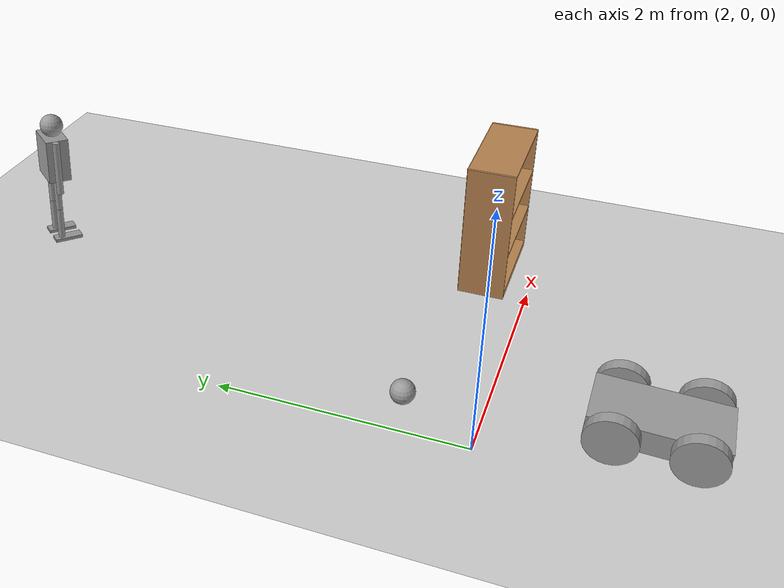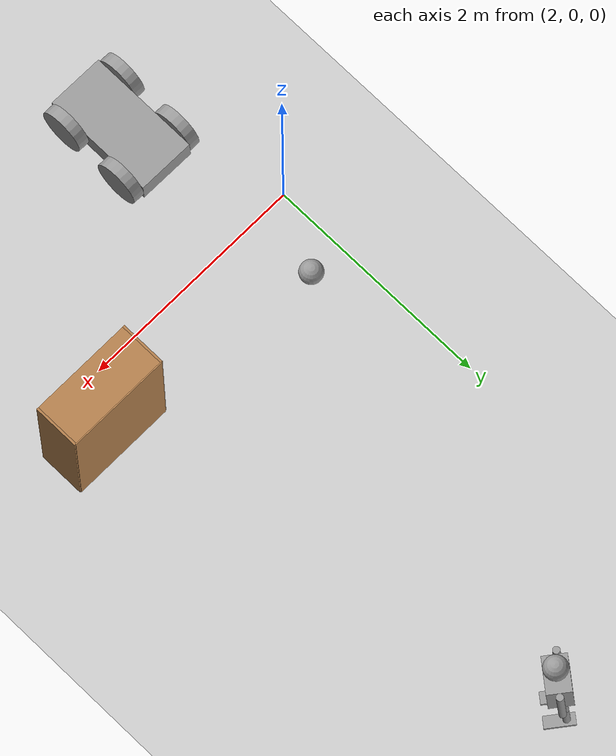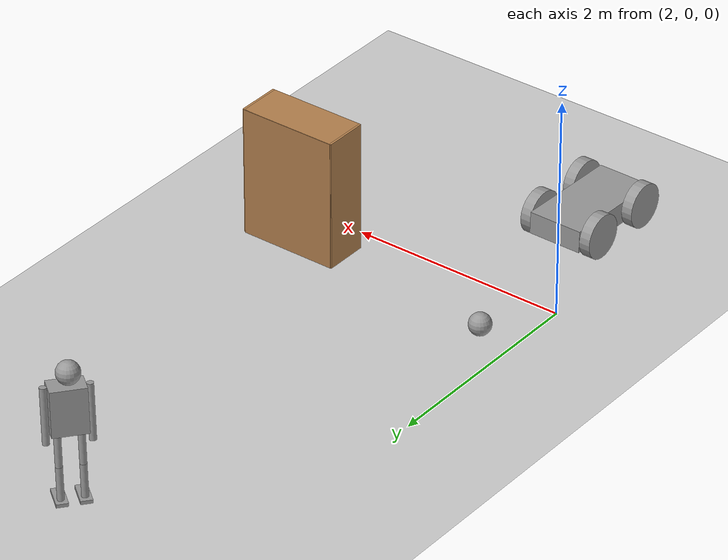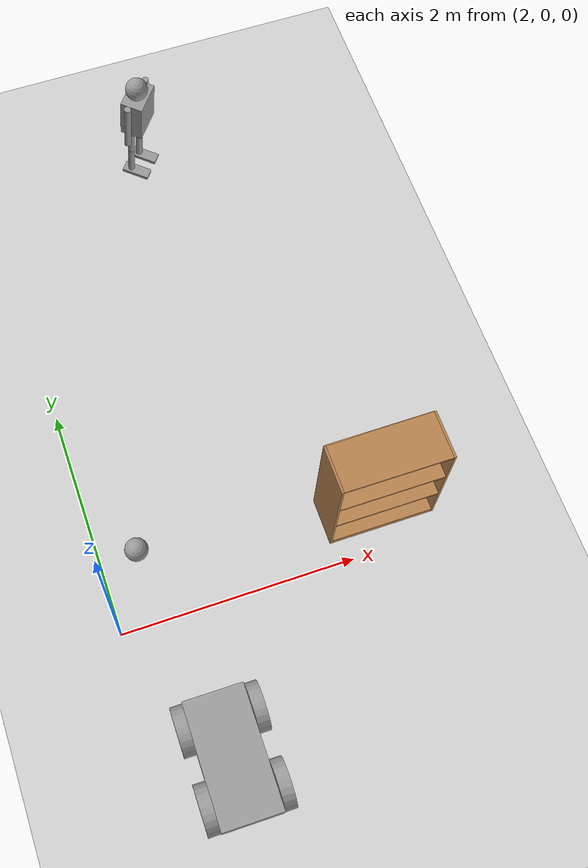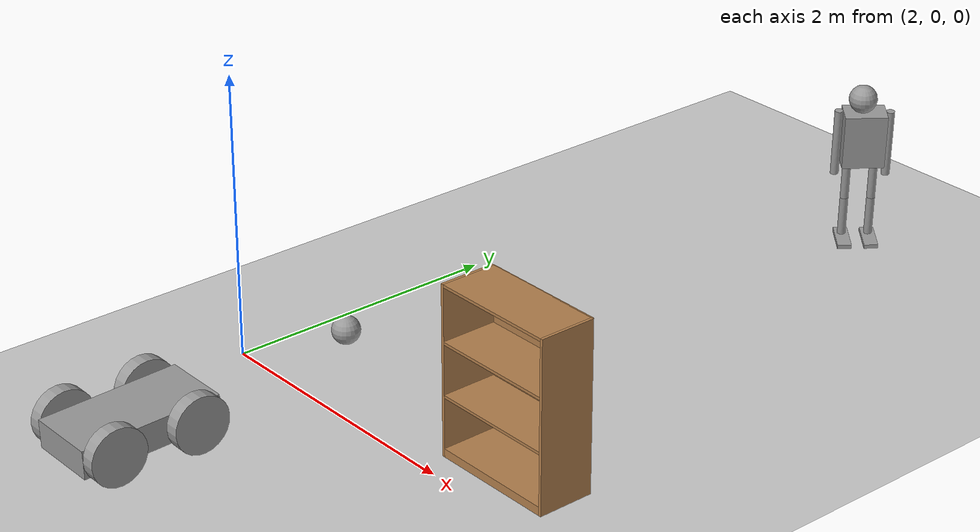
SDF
<sdf version="1.7">
 <world name="default">
  <model name="ground_plane">
   <static>1</static>
   <link name="link">
    <collision name="collision">
     <geometry><plane><normal>0 0 1</normal><size>100 100</size></plane></geometry>
     <surface>
      <contact><collide_bitmask>65535</collide_bitmask></contact>
      <friction><ode><mu>100</mu><mu2>50</mu2></ode></friction>
     </surface>
    </collision>
    <visual name="visual">
     <cast_shadows>0</cast_shadows>
     <geometry><plane><normal>0 0 1</normal><size>100 100</size></plane></geometry>
     <material>
      <script><uri>file://media/materials/scripts/gazebo.material</uri><name>Gazebo/Grey</name></script>
     </material>
    </visual>
   </link>
  </model>
  <model name="humanoid_0">
   <link name="link_0_clone">
    <inertial>
     <mass>1</mass>
     <inertia>
      <ixx>0.166667</ixx>
      <ixy>0</ixy>
      <ixz>0</ixz>
      <iyy>0.166667</iyy>
      <iyz>0</iyz>
      <izz>0.166667</izz>
     </inertia>
    </inertial>
    <pose>0.418913 -0.113822 0.015 0 -0 0</pose>
    <visual name="visual">
     <geometry><box><size>0.1 0.25 0.03</size></box></geometry>
     <material>
      <lighting>1</lighting>
      <script><uri>file://media/materials/scripts/gazebo.material</uri><name>Gazebo/Grey</name></script>
      <shader type="pixel"><normal_map>__default__</normal_map></shader>
      <ambient>0.3 0.3 0.3 1</ambient>
      <diffuse>0.7 0.7 0.7 1</diffuse>
      <specular>0.01 0.01 0.01 1</specular>
      <emissive>0 0 0 1</emissive>
     </material>
    </visual>
    <collision name="collision">
     <geometry><box><size>0.1 0.25 0.03</size></box></geometry>
     <surface>
      <friction>
       <ode><mu>1</mu><mu2>1</mu2><fdir1>0 0 0</fdir1><slip1>0</slip1><slip2>0</slip2></ode>
       <torsional>
        <coefficient>1</coefficient>
        <patch_radius>0</patch_radius>
        <surface_radius>0</surface_radius>
        <use_patch_radius>1</use_patch_radius>
        <ode><slip>0</slip></ode>
       </torsional>
      </friction>
      <bounce><restitution_coefficient>0</restitution_coefficient><threshold>1e+06</threshold></bounce>
      <contact>
       <collide_without_contact>0</collide_without_contact>
       <collide_without_contact_bitmask>1</collide_without_contact_bitmask>
       <collide_bitmask>1</collide_bitmask>
       <ode>
        <soft_cfm>0</soft_cfm>
        <soft_erp>0.2</soft_erp>
        <kp>1e+13</kp>
        <kd>1</kd>
        <max_vel>0.01</max_vel>
        <min_depth>0</min_depth>
       </ode>
       <bullet>
        <split_impulse>1</split_impulse>
        <split_impulse_penetration_threshold>-0.01</split_impulse_penetration_threshold>
        <soft_cfm>0</soft_cfm>
        <soft_erp>0.2</soft_erp>
        <kp>1e+13</kp>
        <kd>1</kd>
       </bullet>
      </contact>
     </surface>
    </collision>
   </link>
   <link name="link_0_clone_0">
    <inertial>
     <mass>1</mass>
     <inertia>
      <ixx>0.166667</ixx>
      <ixy>0</ixy>
      <ixz>0</ixz>
      <iyy>0.166667</iyy>
      <iyz>0</iyz>
      <izz>0.166667</izz>
     </inertia>
    </inertial>
    <pose>0.228912 -0.113822 0.015 0 -0 0</pose>
    <visual name="visual">
     <geometry><box><size>0.1 0.25 0.03</size></box></geometry>
     <material>
      <lighting>1</lighting>
      <script><uri>file://media/materials/scripts/gazebo.material</uri><name>Gazebo/Grey</name></script>
      <shader type="pixel"><normal_map>__default__</normal_map></shader>
      <ambient>0.3 0.3 0.3 1</ambient>
      <diffuse>0.7 0.7 0.7 1</diffuse>
      <specular>0.01 0.01 0.01 1</specular>
      <emissive>0 0 0 1</emissive>
     </material>
    </visual>
    <collision name="collision">
     <geometry><box><size>0.1 0.25 0.03</size></box></geometry>
     <surface>
      <friction>
       <ode><mu>1</mu><mu2>1</mu2><fdir1>0 0 0</fdir1><slip1>0</slip1><slip2>0</slip2></ode>
       <torsional>
        <coefficient>1</coefficient>
        <patch_radius>0</patch_radius>
        <surface_radius>0</surface_radius>
        <use_patch_radius>1</use_patch_radius>
        <ode><slip>0</slip></ode>
       </torsional>
      </friction>
      <bounce><restitution_coefficient>0</restitution_coefficient><threshold>1e+06</threshold></bounce>
      <contact>
       <collide_without_contact>0</collide_without_contact>
       <collide_without_contact_bitmask>1</collide_without_contact_bitmask>
       <collide_bitmask>1</collide_bitmask>
       <ode>
        <soft_cfm>0</soft_cfm>
        <soft_erp>0.2</soft_erp>
        <kp>1e+13</kp>
        <kd>1</kd>
        <max_vel>0.01</max_vel>
        <min_depth>0</min_depth>
       </ode>
       <bullet>
        <split_impulse>1</split_impulse>
        <split_impulse_penetration_threshold>-0.01</split_impulse_penetration_threshold>
        <soft_cfm>0</soft_cfm>
        <soft_erp>0.2</soft_erp>
        <kp>1e+13</kp>
        <kd>1</kd>
       </bullet>
      </contact>
     </surface>
    </collision>
   </link>
   <link name="link_1_clone">
    <inertial>
     <mass>1</mass>
     <inertia><ixx>0.145833</ixx><ixy>0</ixy><ixz>0</ixz><iyy>0.145833</iyy><iyz>0</iyz><izz>0.125</izz></inertia>
    </inertial>
    <pose>0.418913 -0.05882 0.175001 0 -0 0</pose>
    <visual name="visual">
     <geometry><cylinder><radius>0.03</radius><length>0.3</length></cylinder></geometry>
     <material>
      <lighting>1</lighting>
      <script><uri>file://media/materials/scripts/gazebo.material</uri><name>Gazebo/Grey</name></script>
      <shader type="pixel"><normal_map>__default__</normal_map></shader>
      <ambient>0.3 0.3 0.3 1</ambient>
      <diffuse>0.7 0.7 0.7 1</diffuse>
      <specular>0.01 0.01 0.01 1</specular>
      <emissive>0 0 0 1</emissive>
     </material>
    </visual>
    <collision name="collision">
     <geometry><cylinder><radius>0.03</radius><length>0.3</length></cylinder></geometry>
     <surface>
      <friction>
       <ode><mu>1</mu><mu2>1</mu2><fdir1>0 0 0</fdir1><slip1>0</slip1><slip2>0</slip2></ode>
       <torsional>
        <coefficient>1</coefficient>
        <patch_radius>0</patch_radius>
        <surface_radius>0</surface_radius>
        <use_patch_radius>1</use_patch_radius>
        <ode><slip>0</slip></ode>
       </torsional>
      </friction>
      <bounce><restitution_coefficient>0</restitution_coefficient><threshold>1e+06</threshold></bounce>
      <contact>
       <collide_without_contact>0</collide_without_contact>
       <collide_without_contact_bitmask>1</collide_without_contact_bitmask>
       <collide_bitmask>1</collide_bitmask>
       <ode>
        <soft_cfm>0</soft_cfm>
        <soft_erp>0.2</soft_erp>
        <kp>1e+13</kp>
        <kd>1</kd>
        <max_vel>0.01</max_vel>
        <min_depth>0</min_depth>
       </ode>
       <bullet>
        <split_impulse>1</split_impulse>
        <split_impulse_penetration_threshold>-0.01</split_impulse_penetration_threshold>
        <soft_cfm>0</soft_cfm>
        <soft_erp>0.2</soft_erp>
        <kp>1e+13</kp>
        <kd>1</kd>
       </bullet>
      </contact>
     </surface>
    </collision>
   </link>
   <link name="link_1_clone_clone">
    <inertial>
     <mass>1</mass>
     <inertia><ixx>0.145833</ixx><ixy>0</ixy><ixz>0</ixz><iyy>0.145833</iyy><iyz>0</iyz><izz>0.125</izz></inertia>
    </inertial>
    <pose>0.228912 -0.058822 0.175 0 -0 0</pose>
    <visual name="visual">
     <geometry><cylinder><radius>0.03</radius><length>0.3</length></cylinder></geometry>
     <material>
      <lighting>1</lighting>
      <script><uri>file://media/materials/scripts/gazebo.material</uri><name>Gazebo/Grey</name></script>
      <shader type="pixel"><normal_map>__default__</normal_map></shader>
      <ambient>0.3 0.3 0.3 1</ambient>
      <diffuse>0.7 0.7 0.7 1</diffuse>
      <specular>0.01 0.01 0.01 1</specular>
      <emissive>0 0 0 1</emissive>
     </material>
    </visual>
    <collision name="collision">
     <geometry><cylinder><radius>0.03</radius><length>0.3</length></cylinder></geometry>
     <surface>
      <friction>
       <ode><mu>1</mu><mu2>1</mu2><fdir1>0 0 0</fdir1><slip1>0</slip1><slip2>0</slip2></ode>
       <torsional>
        <coefficient>1</coefficient>
        <patch_radius>0</patch_radius>
        <surface_radius>0</surface_radius>
        <use_patch_radius>1</use_patch_radius>
        <ode><slip>0</slip></ode>
       </torsional>
      </friction>
      <bounce><restitution_coefficient>0</restitution_coefficient><threshold>1e+06</threshold></bounce>
      <contact>
       <collide_without_contact>0</collide_without_contact>
       <collide_without_contact_bitmask>1</collide_without_contact_bitmask>
       <collide_bitmask>1</collide_bitmask>
       <ode>
        <soft_cfm>0</soft_cfm>
        <soft_erp>0.2</soft_erp>
        <kp>1e+13</kp>
        <kd>1</kd>
        <max_vel>0.01</max_vel>
        <min_depth>0</min_depth>
       </ode>
       <bullet>
        <split_impulse>1</split_impulse>
        <split_impulse_penetration_threshold>-0.01</split_impulse_penetration_threshold>
        <soft_cfm>0</soft_cfm>
        <soft_erp>0.2</soft_erp>
        <kp>1e+13</kp>
        <kd>1</kd>
       </bullet>
      </contact>
     </surface>
    </collision>
   </link>
   <link name="link_1_clone_clone_0">
    <inertial>
     <mass>1</mass>
     <inertia><ixx>0.145833</ixx><ixy>0</ixy><ixz>0</ixz><iyy>0.145833</iyy><iyz>0</iyz><izz>0.125</izz></inertia>
    </inertial>
    <pose>0.418912 -0.05882 0.475001 0 -4e-06 1.3e-05</pose>
    <visual name="visual">
     <geometry><cylinder><radius>0.03</radius><length>0.3</length></cylinder></geometry>
     <material>
      <lighting>1</lighting>
      <script><uri>file://media/materials/scripts/gazebo.material</uri><name>Gazebo/Grey</name></script>
      <shader type="pixel"><normal_map>__default__</normal_map></shader>
      <ambient>0.3 0.3 0.3 1</ambient>
      <diffuse>0.7 0.7 0.7 1</diffuse>
      <specular>0.01 0.01 0.01 1</specular>
      <emissive>0 0 0 1</emissive>
     </material>
    </visual>
    <collision name="collision">
     <geometry><cylinder><radius>0.03</radius><length>0.3</length></cylinder></geometry>
     <surface>
      <friction>
       <ode><mu>1</mu><mu2>1</mu2><fdir1>0 0 0</fdir1><slip1>0</slip1><slip2>0</slip2></ode>
       <torsional>
        <coefficient>1</coefficient>
        <patch_radius>0</patch_radius>
        <surface_radius>0</surface_radius>
        <use_patch_radius>1</use_patch_radius>
        <ode><slip>0</slip></ode>
       </torsional>
      </friction>
      <bounce><restitution_coefficient>0</restitution_coefficient><threshold>1e+06</threshold></bounce>
      <contact>
       <collide_without_contact>0</collide_without_contact>
       <collide_without_contact_bitmask>1</collide_without_contact_bitmask>
       <collide_bitmask>1</collide_bitmask>
       <ode>
        <soft_cfm>0</soft_cfm>
        <soft_erp>0.2</soft_erp>
        <kp>1e+13</kp>
        <kd>1</kd>
        <max_vel>0.01</max_vel>
        <min_depth>0</min_depth>
       </ode>
       <bullet>
        <split_impulse>1</split_impulse>
        <split_impulse_penetration_threshold>-0.01</split_impulse_penetration_threshold>
        <soft_cfm>0</soft_cfm>
        <soft_erp>0.2</soft_erp>
        <kp>1e+13</kp>
        <kd>1</kd>
       </bullet>
      </contact>
     </surface>
    </collision>
   </link>
   <link name="link_1_clone_clone_1">
    <inertial>
     <mass>1</mass>
     <inertia><ixx>0.145833</ixx><ixy>0</ixy><ixz>0</ixz><iyy>0.145833</iyy><iyz>0</iyz><izz>0.125</izz></inertia>
    </inertial>
    <pose>0.228912 -0.058822 0.475 0 -4e-06 1.3e-05</pose>
    <visual name="visual">
     <geometry><cylinder><radius>0.03</radius><length>0.3</length></cylinder></geometry>
     <material>
      <lighting>1</lighting>
      <script><uri>file://media/materials/scripts/gazebo.material</uri><name>Gazebo/Grey</name></script>
      <shader type="pixel"><normal_map>__default__</normal_map></shader>
      <ambient>0.3 0.3 0.3 1</ambient>
      <diffuse>0.7 0.7 0.7 1</diffuse>
      <specular>0.01 0.01 0.01 1</specular>
      <emissive>0 0 0 1</emissive>
     </material>
    </visual>
    <collision name="collision">
     <geometry><cylinder><radius>0.03</radius><length>0.3</length></cylinder></geometry>
     <surface>
      <friction>
       <ode><mu>1</mu><mu2>1</mu2><fdir1>0 0 0</fdir1><slip1>0</slip1><slip2>0</slip2></ode>
       <torsional>
        <coefficient>1</coefficient>
        <patch_radius>0</patch_radius>
        <surface_radius>0</surface_radius>
        <use_patch_radius>1</use_patch_radius>
        <ode><slip>0</slip></ode>
       </torsional>
      </friction>
      <bounce><restitution_coefficient>0</restitution_coefficient><threshold>1e+06</threshold></bounce>
      <contact>
       <collide_without_contact>0</collide_without_contact>
       <collide_without_contact_bitmask>1</collide_without_contact_bitmask>
       <collide_bitmask>1</collide_bitmask>
       <ode>
        <soft_cfm>0</soft_cfm>
        <soft_erp>0.2</soft_erp>
        <kp>1e+13</kp>
        <kd>1</kd>
        <max_vel>0.01</max_vel>
        <min_depth>0</min_depth>
       </ode>
       <bullet>
        <split_impulse>1</split_impulse>
        <split_impulse_penetration_threshold>-0.01</split_impulse_penetration_threshold>
        <soft_cfm>0</soft_cfm>
        <soft_erp>0.2</soft_erp>
        <kp>1e+13</kp>
        <kd>1</kd>
       </bullet>
      </contact>
     </surface>
    </collision>
   </link>
   <link name="link_2">
    <inertial>
     <mass>1</mass>
     <inertia>
      <ixx>0.166667</ixx>
      <ixy>0</ixy>
      <ixz>0</ixz>
      <iyy>0.166667</iyy>
      <iyz>0</iyz>
      <izz>0.166667</izz>
     </inertia>
    </inertial>
    <pose>0.323911 -0.078821 0.825 0 -4e-06 1.3e-05</pose>
    <visual name="visual">
     <geometry><box><size>0.3 0.2 0.4</size></box></geometry>
     <material>
      <lighting>1</lighting>
      <script><uri>file://media/materials/scripts/gazebo.material</uri><name>Gazebo/Grey</name></script>
      <shader type="pixel"><normal_map>__default__</normal_map></shader>
      <ambient>0.3 0.3 0.3 1</ambient>
      <diffuse>0.7 0.7 0.7 1</diffuse>
      <specular>0.01 0.01 0.01 1</specular>
      <emissive>0 0 0 1</emissive>
     </material>
    </visual>
    <collision name="collision">
     <geometry><box><size>0.3 0.2 0.4</size></box></geometry>
     <surface>
      <friction>
       <ode><mu>1</mu><mu2>1</mu2><fdir1>0 0 0</fdir1><slip1>0</slip1><slip2>0</slip2></ode>
       <torsional>
        <coefficient>1</coefficient>
        <patch_radius>0</patch_radius>
        <surface_radius>0</surface_radius>
        <use_patch_radius>1</use_patch_radius>
        <ode><slip>0</slip></ode>
       </torsional>
      </friction>
      <bounce><restitution_coefficient>0</restitution_coefficient><threshold>1e+06</threshold></bounce>
      <contact>
       <collide_without_contact>0</collide_without_contact>
       <collide_without_contact_bitmask>1</collide_without_contact_bitmask>
       <collide_bitmask>1</collide_bitmask>
       <ode>
        <soft_cfm>0</soft_cfm>
        <soft_erp>0.2</soft_erp>
        <kp>1e+13</kp>
        <kd>1</kd>
        <max_vel>0.01</max_vel>
        <min_depth>0</min_depth>
       </ode>
       <bullet>
        <split_impulse>1</split_impulse>
        <split_impulse_penetration_threshold>-0.01</split_impulse_penetration_threshold>
        <soft_cfm>0</soft_cfm>
        <soft_erp>0.2</soft_erp>
        <kp>1e+13</kp>
        <kd>1</kd>
       </bullet>
      </contact>
     </surface>
    </collision>
   </link>
   <link name="link_3">
    <inertial>
     <mass>1</mass>
     <inertia><ixx>0.145833</ixx><ixy>0</ixy><ixz>0</ixz><iyy>0.145833</iyy><iyz>0</iyz><izz>0.125</izz></inertia>
    </inertial>
    <pose>0.503911 -0.078818 0.775001 0 -4e-06 1.3e-05</pose>
    <visual name="visual">
     <geometry><cylinder><radius>0.03</radius><length>0.5</length></cylinder></geometry>
     <material>
      <lighting>1</lighting>
      <script><uri>file://media/materials/scripts/gazebo.material</uri><name>Gazebo/Grey</name></script>
      <shader type="pixel"><normal_map>__default__</normal_map></shader>
      <ambient>0.3 0.3 0.3 1</ambient>
      <diffuse>0.7 0.7 0.7 1</diffuse>
      <specular>0.01 0.01 0.01 1</specular>
      <emissive>0 0 0 1</emissive>
     </material>
    </visual>
    <collision name="collision">
     <geometry><cylinder><radius>0.03</radius><length>0.5</length></cylinder></geometry>
     <surface>
      <friction>
       <ode><mu>1</mu><mu2>1</mu2><fdir1>0 0 0</fdir1><slip1>0</slip1><slip2>0</slip2></ode>
       <torsional>
        <coefficient>1</coefficient>
        <patch_radius>0</patch_radius>
        <surface_radius>0</surface_radius>
        <use_patch_radius>1</use_patch_radius>
        <ode><slip>0</slip></ode>
       </torsional>
      </friction>
      <bounce><restitution_coefficient>0</restitution_coefficient><threshold>1e+06</threshold></bounce>
      <contact>
       <collide_without_contact>0</collide_without_contact>
       <collide_without_contact_bitmask>1</collide_without_contact_bitmask>
       <collide_bitmask>1</collide_bitmask>
       <ode>
        <soft_cfm>0</soft_cfm>
        <soft_erp>0.2</soft_erp>
        <kp>1e+13</kp>
        <kd>1</kd>
        <max_vel>0.01</max_vel>
        <min_depth>0</min_depth>
       </ode>
       <bullet>
        <split_impulse>1</split_impulse>
        <split_impulse_penetration_threshold>-0.01</split_impulse_penetration_threshold>
        <soft_cfm>0</soft_cfm>
        <soft_erp>0.2</soft_erp>
        <kp>1e+13</kp>
        <kd>1</kd>
       </bullet>
      </contact>
     </surface>
    </collision>
   </link>
   <link name="link_3_clone">
    <inertial>
     <mass>1</mass>
     <inertia><ixx>0.145833</ixx><ixy>0</ixy><ixz>0</ixz><iyy>0.145833</iyy><iyz>0</iyz><izz>0.125</izz></inertia>
    </inertial>
    <pose>0.143909 -0.058823 0.775002 0 -8e-06 2.6e-05</pose>
    <visual name="visual">
     <geometry><cylinder><radius>0.03</radius><length>0.5</length></cylinder></geometry>
     <material>
      <lighting>1</lighting>
      <script><uri>file://media/materials/scripts/gazebo.material</uri><name>Gazebo/Grey</name></script>
      <shader type="pixel"><normal_map>__default__</normal_map></shader>
      <ambient>0.3 0.3 0.3 1</ambient>
      <diffuse>0.7 0.7 0.7 1</diffuse>
      <specular>0.01 0.01 0.01 1</specular>
      <emissive>0 0 0 1</emissive>
     </material>
    </visual>
    <collision name="collision">
     <geometry><cylinder><radius>0.03</radius><length>0.5</length></cylinder></geometry>
     <surface>
      <friction>
       <ode><mu>1</mu><mu2>1</mu2><fdir1>0 0 0</fdir1><slip1>0</slip1><slip2>0</slip2></ode>
       <torsional>
        <coefficient>1</coefficient>
        <patch_radius>0</patch_radius>
        <surface_radius>0</surface_radius>
        <use_patch_radius>1</use_patch_radius>
        <ode><slip>0</slip></ode>
       </torsional>
      </friction>
      <bounce><restitution_coefficient>0</restitution_coefficient><threshold>1e+06</threshold></bounce>
      <contact>
       <collide_without_contact>0</collide_without_contact>
       <collide_without_contact_bitmask>1</collide_without_contact_bitmask>
       <collide_bitmask>1</collide_bitmask>
       <ode>
        <soft_cfm>0</soft_cfm>
        <soft_erp>0.2</soft_erp>
        <kp>1e+13</kp>
        <kd>1</kd>
        <max_vel>0.01</max_vel>
        <min_depth>0</min_depth>
       </ode>
       <bullet>
        <split_impulse>1</split_impulse>
        <split_impulse_penetration_threshold>-0.01</split_impulse_penetration_threshold>
        <soft_cfm>0</soft_cfm>
        <soft_erp>0.2</soft_erp>
        <kp>1e+13</kp>
        <kd>1</kd>
       </bullet>
      </contact>
     </surface>
    </collision>
   </link>
   <link name="link_4">
    <inertial>
     <mass>1</mass>
     <inertia><ixx>0.1</ixx><ixy>0</ixy><ixz>0</ixz><iyy>0.1</iyy><iyz>0</iyz><izz>0.1</izz></inertia>
    </inertial>
    <pose>0.30391 -0.078821 1.125 0 -4e-06 1.3e-05</pose>
    <visual name="visual">
     <geometry><sphere><radius>0.1</radius></sphere></geometry>
     <material>
      <lighting>1</lighting>
      <script><uri>file://media/materials/scripts/gazebo.material</uri><name>Gazebo/Grey</name></script>
      <shader type="pixel"><normal_map>__default__</normal_map></shader>
      <ambient>0.3 0.3 0.3 1</ambient>
      <diffuse>0.7 0.7 0.7 1</diffuse>
      <specular>0.01 0.01 0.01 1</specular>
      <emissive>0 0 0 1</emissive>
     </material>
    </visual>
    <collision name="collision">
     <geometry><sphere><radius>0.1</radius></sphere></geometry>
     <surface>
      <friction>
       <ode><mu>1</mu><mu2>1</mu2><fdir1>0 0 0</fdir1><slip1>0</slip1><slip2>0</slip2></ode>
       <torsional>
        <coefficient>1</coefficient>
        <patch_radius>0</patch_radius>
        <surface_radius>0</surface_radius>
        <use_patch_radius>1</use_patch_radius>
        <ode><slip>0</slip></ode>
       </torsional>
      </friction>
      <bounce><restitution_coefficient>0</restitution_coefficient><threshold>1e+06</threshold></bounce>
      <contact>
       <collide_without_contact>0</collide_without_contact>
       <collide_without_contact_bitmask>1</collide_without_contact_bitmask>
       <collide_bitmask>1</collide_bitmask>
       <ode>
        <soft_cfm>0</soft_cfm>
        <soft_erp>0.2</soft_erp>
        <kp>1e+13</kp>
        <kd>1</kd>
        <max_vel>0.01</max_vel>
        <min_depth>0</min_depth>
       </ode>
       <bullet>
        <split_impulse>1</split_impulse>
        <split_impulse_penetration_threshold>-0.01</split_impulse_penetration_threshold>
        <soft_cfm>0</soft_cfm>
        <soft_erp>0.2</soft_erp>
        <kp>1e+13</kp>
        <kd>1</kd>
       </bullet>
      </contact>
     </surface>
    </collision>
   </link>
   <joint name="link_0_clone_0_JOINT_3" type="universal">
    <parent>link_0_clone_0</parent>
    <child>link_1_clone_clone</child>
    <axis>
     <xyz>1 0 0</xyz>
     <limit>
      <lower>-1.79769e+308</lower>
      <upper>1.79769e+308</upper>
      <effort>-1</effort>
      <velocity>-1</velocity>
     </limit>
     <dynamics>
      <spring_reference>0</spring_reference>
      <spring_stiffness>0</spring_stiffness>
      <damping>0</damping>
      <friction>0</friction>
     </dynamics>
    </axis>
    <axis2>
     <xyz>0 1 0</xyz>
     <limit>
      <lower>-1.79769e+308</lower>
      <upper>1.79769e+308</upper>
      <effort>-1</effort>
      <velocity>-1</velocity>
     </limit>
     <dynamics>
      <spring_reference>0</spring_reference>
      <spring_stiffness>0</spring_stiffness>
      <damping>0</damping>
      <friction>0</friction>
     </dynamics>
    </axis2>
    <physics>
     <ode><limit><cfm>0</cfm><erp>0.2</erp></limit><suspension><cfm>0</cfm><erp>0.2</erp></suspension></ode>
    </physics>
   </joint>
   <joint name="link_0_clone_JOINT_14" type="universal">
    <parent>link_1_clone</parent>
    <child>link_0_clone</child>
    <axis>
     <xyz>1 0 0</xyz>
     <limit>
      <lower>-1.79769e+308</lower>
      <upper>1.79769e+308</upper>
      <effort>-1</effort>
      <velocity>-1</velocity>
     </limit>
     <dynamics>
      <spring_reference>0</spring_reference>
      <spring_stiffness>0</spring_stiffness>
      <damping>0</damping>
     </dynamics>
    </axis>
    <axis2>
     <xyz>0 1 0</xyz>
     <limit>
      <lower>-1.79769e+308</lower>
      <upper>1.79769e+308</upper>
      <effort>-1</effort>
      <velocity>-1</velocity>
     </limit>
     <dynamics>
      <spring_reference>0</spring_reference>
      <spring_stiffness>0</spring_stiffness>
      <damping>0</damping>
     </dynamics>
    </axis2>
    <physics>
     <ode><limit><cfm>0</cfm><erp>0.2</erp></limit><suspension><cfm>0</cfm><erp>0.2</erp></suspension></ode>
    </physics>
   </joint>
   <joint name="link_1_clone_clone_0_JOINT_12" type="ball">
    <parent>link_1_clone_clone_0</parent>
    <child>link_1_clone</child>
    <physics>
     <ode><limit><cfm>0</cfm><erp>0.2</erp></limit><suspension><cfm>0</cfm><erp>0.2</erp></suspension></ode>
    </physics>
   </joint>
   <joint name="link_1_clone_clone_1_JOINT_9" type="universal">
    <parent>link_1_clone_clone_1</parent>
    <child>link_2</child>
    <axis>
     <xyz>1 0 0</xyz>
     <limit>
      <lower>-1.79769e+308</lower>
      <upper>1.79769e+308</upper>
      <effort>-1</effort>
      <velocity>-1</velocity>
     </limit>
     <dynamics>
      <spring_reference>0</spring_reference>
      <spring_stiffness>0</spring_stiffness>
      <damping>0</damping>
     </dynamics>
    </axis>
    <axis2>
     <xyz>0 1 0</xyz>
     <limit>
      <lower>-1.79769e+308</lower>
      <upper>1.79769e+308</upper>
      <effort>-1</effort>
      <velocity>-1</velocity>
     </limit>
     <dynamics>
      <spring_reference>0</spring_reference>
      <spring_stiffness>0</spring_stiffness>
      <damping>0</damping>
     </dynamics>
    </axis2>
    <physics>
     <ode><limit><cfm>0</cfm><erp>0.2</erp></limit><suspension><cfm>0</cfm><erp>0.2</erp></suspension></ode>
    </physics>
   </joint>
   <joint name="link_1_clone_clone_JOINT_7" type="revolute">
    <parent>link_1_clone_clone</parent>
    <child>link_1_clone_clone_1</child>
    <axis>
     <xyz>1 0 0</xyz>
     <limit>
      <lower>-1.79769e+308</lower>
      <upper>1.79769e+308</upper>
      <effort>-1</effort>
      <velocity>-1</velocity>
     </limit>
     <dynamics>
      <spring_reference>0</spring_reference>
      <spring_stiffness>0</spring_stiffness>
      <damping>0</damping>
     </dynamics>
    </axis>
    <physics>
     <ode><limit><cfm>0</cfm><erp>0.2</erp></limit><suspension><cfm>0</cfm><erp>0.2</erp></suspension></ode>
    </physics>
   </joint>
   <joint name="link_2_JOINT_11" type="universal">
    <parent>link_2</parent>
    <child>link_1_clone_clone_0</child>
    <axis>
     <xyz>1 0 0</xyz>
     <limit>
      <lower>-1.79769e+308</lower>
      <upper>1.79769e+308</upper>
      <effort>-1</effort>
      <velocity>-1</velocity>
     </limit>
     <dynamics>
      <spring_reference>0</spring_reference>
      <spring_stiffness>0</spring_stiffness>
      <damping>0</damping>
     </dynamics>
    </axis>
    <axis2>
     <xyz>0 1 0</xyz>
     <limit>
      <lower>-1.79769e+308</lower>
      <upper>1.79769e+308</upper>
      <effort>-1</effort>
      <velocity>-1</velocity>
     </limit>
     <dynamics>
      <spring_reference>0</spring_reference>
      <spring_stiffness>0</spring_stiffness>
      <damping>0</damping>
     </dynamics>
    </axis2>
    <physics>
     <ode><limit><cfm>0</cfm><erp>0.2</erp></limit><suspension><cfm>0</cfm><erp>0.2</erp></suspension></ode>
    </physics>
   </joint>
   <joint name="link_2_JOINT_15" type="revolute">
    <parent>link_2</parent>
    <child>link_3</child>
    <pose>0 0 0.2 0 -0 0</pose>
    <axis>
     <xyz>1 0 0</xyz>
     <limit>
      <lower>-1.79769e+308</lower>
      <upper>1.79769e+308</upper>
      <effort>-1</effort>
      <velocity>-1</velocity>
     </limit>
     <dynamics>
      <spring_reference>0</spring_reference>
      <spring_stiffness>0</spring_stiffness>
      <damping>0</damping>
     </dynamics>
    </axis>
    <physics>
     <ode><limit><cfm>0</cfm><erp>0.2</erp></limit><suspension><cfm>0</cfm><erp>0.2</erp></suspension></ode>
    </physics>
   </joint>
   <joint name="link_2_JOINT_17" type="revolute">
    <parent>link_2</parent>
    <child>link_4</child>
    <axis>
     <xyz>1 0 0</xyz>
     <limit>
      <lower>-1.79769e+308</lower>
      <upper>1.79769e+308</upper>
      <effort>-1</effort>
      <velocity>-1</velocity>
     </limit>
     <dynamics>
      <spring_reference>0</spring_reference>
      <spring_stiffness>0</spring_stiffness>
      <damping>0</damping>
     </dynamics>
    </axis>
    <physics>
     <ode><limit><cfm>0</cfm><erp>0.2</erp></limit><suspension><cfm>0</cfm><erp>0.2</erp></suspension></ode>
    </physics>
   </joint>
   <joint name="link_3_clone_JOINT_16" type="revolute">
    <parent>link_2</parent>
    <child>link_3_clone</child>
    <pose>0 0 0.2 0 -0 0</pose>
    <axis>
     <xyz>1 0 0</xyz>
     <limit>
      <lower>-1.79769e+308</lower>
      <upper>1.79769e+308</upper>
      <effort>-1</effort>
      <velocity>-1</velocity>
     </limit>
     <dynamics>
      <spring_reference>0</spring_reference>
      <spring_stiffness>0</spring_stiffness>
      <damping>0</damping>
     </dynamics>
    </axis>
    <physics>
     <ode><limit><cfm>0</cfm><erp>0.2</erp></limit><suspension><cfm>0</cfm><erp>0.2</erp></suspension></ode>
    </physics>
   </joint>
   <static>0</static>
   <pose>3.17597 4.15519 0.019234 0.080623 0 0.894168</pose>
  </model>
  <model name="4wheel_clone">
   <link name="link_0">
    <inertial>
     <mass>1</mass>
     <inertia>
      <ixx>0.166667</ixx>
      <ixy>0</ixy>
      <ixz>0</ixz>
      <iyy>0.166667</iyy>
      <iyz>0</iyz>
      <izz>0.166667</izz>
     </inertia>
    </inertial>
    <pose>0 0 -0.007999 0 -0 0</pose>
    <visual name="visual">
     <geometry><box><size>0.5 1 0.2</size></box></geometry>
     <material>
      <lighting>1</lighting>
      <script><uri>file://media/materials/scripts/gazebo.material</uri><name>Gazebo/Grey</name></script>
      <shader type="pixel"><normal_map>__default__</normal_map></shader>
      <ambient>0.3 0.3 0.3 1</ambient>
      <diffuse>0.7 0.7 0.7 1</diffuse>
      <specular>0.01 0.01 0.01 1</specular>
      <emissive>0 0 0 1</emissive>
     </material>
    </visual>
    <collision name="collision">
     <geometry><box><size>0.5 1 0.2</size></box></geometry>
     <surface>
      <friction>
       <ode><mu>1</mu><mu2>1</mu2><fdir1>0 0 0</fdir1><slip1>0</slip1><slip2>0</slip2></ode>
       <torsional>
        <coefficient>1</coefficient>
        <patch_radius>0</patch_radius>
        <surface_radius>0</surface_radius>
        <use_patch_radius>1</use_patch_radius>
        <ode><slip>0</slip></ode>
       </torsional>
      </friction>
      <bounce><restitution_coefficient>0</restitution_coefficient><threshold>1e+06</threshold></bounce>
      <contact>
       <collide_without_contact>0</collide_without_contact>
       <collide_without_contact_bitmask>1</collide_without_contact_bitmask>
       <collide_bitmask>1</collide_bitmask>
       <ode>
        <soft_cfm>0</soft_cfm>
        <soft_erp>0.2</soft_erp>
        <kp>1e+13</kp>
        <kd>1</kd>
        <max_vel>0.01</max_vel>
        <min_depth>0</min_depth>
       </ode>
       <bullet>
        <split_impulse>1</split_impulse>
        <split_impulse_penetration_threshold>-0.01</split_impulse_penetration_threshold>
        <soft_cfm>0</soft_cfm>
        <soft_erp>0.2</soft_erp>
        <kp>1e+13</kp>
        <kd>1</kd>
       </bullet>
      </contact>
     </surface>
    </collision>
   </link>
   <link name="link_1">
    <inertial>
     <mass>1</mass>
     <inertia><ixx>0.145833</ixx><ixy>0</ixy><ixz>0</ixz><iyy>0.145833</iyy><iyz>0</iyz><izz>0.125</izz></inertia>
    </inertial>
    <pose>0.300039 0.299995 -0.008004 1.5707 0 1.5707</pose>
    <visual name="visual">
     <geometry><cylinder><radius>0.2</radius><length>0.1</length></cylinder></geometry>
     <material>
      <lighting>1</lighting>
      <script><uri>file://media/materials/scripts/gazebo.material</uri><name>Gazebo/Grey</name></script>
      <shader type="pixel"><normal_map>__default__</normal_map></shader>
      <ambient>0.3 0.3 0.3 1</ambient>
      <diffuse>0.7 0.7 0.7 1</diffuse>
      <specular>0.01 0.01 0.01 1</specular>
      <emissive>0 0 0 1</emissive>
     </material>
    </visual>
    <collision name="collision">
     <geometry><cylinder><radius>0.2</radius><length>0.1</length></cylinder></geometry>
     <surface>
      <friction>
       <ode><mu>1</mu><mu2>1</mu2><fdir1>0 0 0</fdir1><slip1>0</slip1><slip2>0</slip2></ode>
       <torsional>
        <coefficient>1</coefficient>
        <patch_radius>0</patch_radius>
        <surface_radius>0</surface_radius>
        <use_patch_radius>1</use_patch_radius>
        <ode><slip>0</slip></ode>
       </torsional>
      </friction>
      <bounce><restitution_coefficient>0</restitution_coefficient><threshold>1e+06</threshold></bounce>
      <contact>
       <collide_without_contact>0</collide_without_contact>
       <collide_without_contact_bitmask>1</collide_without_contact_bitmask>
       <collide_bitmask>1</collide_bitmask>
       <ode>
        <soft_cfm>0</soft_cfm>
        <soft_erp>0.2</soft_erp>
        <kp>1e+13</kp>
        <kd>1</kd>
        <max_vel>0.01</max_vel>
        <min_depth>0</min_depth>
       </ode>
       <bullet>
        <split_impulse>1</split_impulse>
        <split_impulse_penetration_threshold>-0.01</split_impulse_penetration_threshold>
        <soft_cfm>0</soft_cfm>
        <soft_erp>0.2</soft_erp>
        <kp>1e+13</kp>
        <kd>1</kd>
       </bullet>
      </contact>
     </surface>
    </collision>
   </link>
   <link name="link_1_clone">
    <inertial>
     <mass>1</mass>
     <inertia><ixx>0.145833</ixx><ixy>0</ixy><ixz>0</ixz><iyy>0.145833</iyy><iyz>0</iyz><izz>0.125</izz></inertia>
    </inertial>
    <pose>-0.300039 0.299995 -0.007999 1.5707 0 1.5707</pose>
    <visual name="visual">
     <geometry><cylinder><radius>0.2</radius><length>0.1</length></cylinder></geometry>
     <material>
      <lighting>1</lighting>
      <script><uri>file://media/materials/scripts/gazebo.material</uri><name>Gazebo/Grey</name></script>
      <shader type="pixel"><normal_map>__default__</normal_map></shader>
      <ambient>0.3 0.3 0.3 1</ambient>
      <diffuse>0.7 0.7 0.7 1</diffuse>
      <specular>0.01 0.01 0.01 1</specular>
      <emissive>0 0 0 1</emissive>
     </material>
    </visual>
    <collision name="collision">
     <geometry><cylinder><radius>0.2</radius><length>0.1</length></cylinder></geometry>
     <surface>
      <friction>
       <ode><mu>1</mu><mu2>1</mu2><fdir1>0 0 0</fdir1><slip1>0</slip1><slip2>0</slip2></ode>
       <torsional>
        <coefficient>1</coefficient>
        <patch_radius>0</patch_radius>
        <surface_radius>0</surface_radius>
        <use_patch_radius>1</use_patch_radius>
        <ode><slip>0</slip></ode>
       </torsional>
      </friction>
      <bounce><restitution_coefficient>0</restitution_coefficient><threshold>1e+06</threshold></bounce>
      <contact>
       <collide_without_contact>0</collide_without_contact>
       <collide_without_contact_bitmask>1</collide_without_contact_bitmask>
       <collide_bitmask>1</collide_bitmask>
       <ode>
        <soft_cfm>0</soft_cfm>
        <soft_erp>0.2</soft_erp>
        <kp>1e+13</kp>
        <kd>1</kd>
        <max_vel>0.01</max_vel>
        <min_depth>0</min_depth>
       </ode>
       <bullet>
        <split_impulse>1</split_impulse>
        <split_impulse_penetration_threshold>-0.01</split_impulse_penetration_threshold>
        <soft_cfm>0</soft_cfm>
        <soft_erp>0.2</soft_erp>
        <kp>1e+13</kp>
        <kd>1</kd>
       </bullet>
      </contact>
     </surface>
    </collision>
   </link>
   <link name="link_1_clone_0">
    <inertial>
     <mass>1</mass>
     <inertia><ixx>0.145833</ixx><ixy>0</ixy><ixz>0</ixz><iyy>0.145833</iyy><iyz>0</iyz><izz>0.125</izz></inertia>
    </inertial>
    <pose>0.300039 -0.299995 0.012001 1.5707 0 1.5707</pose>
    <visual name="visual">
     <geometry><cylinder><radius>0.2</radius><length>0.1</length></cylinder></geometry>
     <material>
      <lighting>1</lighting>
      <script><uri>file://media/materials/scripts/gazebo.material</uri><name>Gazebo/Grey</name></script>
      <shader type="pixel"><normal_map>__default__</normal_map></shader>
      <ambient>0.3 0.3 0.3 1</ambient>
      <diffuse>0.7 0.7 0.7 1</diffuse>
      <specular>0.01 0.01 0.01 1</specular>
      <emissive>0 0 0 1</emissive>
     </material>
    </visual>
    <collision name="collision">
     <geometry><cylinder><radius>0.2</radius><length>0.1</length></cylinder></geometry>
     <surface>
      <friction>
       <ode><mu>1</mu><mu2>1</mu2><fdir1>0 0 0</fdir1><slip1>0</slip1><slip2>0</slip2></ode>
       <torsional>
        <coefficient>1</coefficient>
        <patch_radius>0</patch_radius>
        <surface_radius>0</surface_radius>
        <use_patch_radius>1</use_patch_radius>
        <ode><slip>0</slip></ode>
       </torsional>
      </friction>
      <bounce><restitution_coefficient>0</restitution_coefficient><threshold>1e+06</threshold></bounce>
      <contact>
       <collide_without_contact>0</collide_without_contact>
       <collide_without_contact_bitmask>1</collide_without_contact_bitmask>
       <collide_bitmask>1</collide_bitmask>
       <ode>
        <soft_cfm>0</soft_cfm>
        <soft_erp>0.2</soft_erp>
        <kp>1e+13</kp>
        <kd>1</kd>
        <max_vel>0.01</max_vel>
        <min_depth>0</min_depth>
       </ode>
       <bullet>
        <split_impulse>1</split_impulse>
        <split_impulse_penetration_threshold>-0.01</split_impulse_penetration_threshold>
        <soft_cfm>0</soft_cfm>
        <soft_erp>0.2</soft_erp>
        <kp>1e+13</kp>
        <kd>1</kd>
       </bullet>
      </contact>
     </surface>
    </collision>
   </link>
   <link name="link_1_clone_1">
    <inertial>
     <mass>1</mass>
     <inertia><ixx>0.145833</ixx><ixy>0</ixy><ixz>0</ixz><iyy>0.145833</iyy><iyz>0</iyz><izz>0.125</izz></inertia>
    </inertial>
    <pose>-0.300039 -0.299995 0.012001 1.5707 0 1.5707</pose>
    <visual name="visual">
     <geometry><cylinder><radius>0.2</radius><length>0.1</length></cylinder></geometry>
     <material>
      <lighting>1</lighting>
      <script><uri>file://media/materials/scripts/gazebo.material</uri><name>Gazebo/Grey</name></script>
      <shader type="pixel"><normal_map>__default__</normal_map></shader>
      <ambient>0.3 0.3 0.3 1</ambient>
      <diffuse>0.7 0.7 0.7 1</diffuse>
      <specular>0.01 0.01 0.01 1</specular>
      <emissive>0 0 0 1</emissive>
     </material>
    </visual>
    <collision name="collision">
     <geometry><cylinder><radius>0.2</radius><length>0.1</length></cylinder></geometry>
     <surface>
      <friction>
       <ode><mu>1</mu><mu2>1</mu2><fdir1>0 0 0</fdir1><slip1>0</slip1><slip2>0</slip2></ode>
       <torsional>
        <coefficient>1</coefficient>
        <patch_radius>0</patch_radius>
        <surface_radius>0</surface_radius>
        <use_patch_radius>1</use_patch_radius>
        <ode><slip>0</slip></ode>
       </torsional>
      </friction>
      <bounce><restitution_coefficient>0</restitution_coefficient><threshold>1e+06</threshold></bounce>
      <contact>
       <collide_without_contact>0</collide_without_contact>
       <collide_without_contact_bitmask>1</collide_without_contact_bitmask>
       <collide_bitmask>1</collide_bitmask>
       <ode>
        <soft_cfm>0</soft_cfm>
        <soft_erp>0.2</soft_erp>
        <kp>1e+13</kp>
        <kd>1</kd>
        <max_vel>0.01</max_vel>
        <min_depth>0</min_depth>
       </ode>
       <bullet>
        <split_impulse>1</split_impulse>
        <split_impulse_penetration_threshold>-0.01</split_impulse_penetration_threshold>
        <soft_cfm>0</soft_cfm>
        <soft_erp>0.2</soft_erp>
        <kp>1e+13</kp>
        <kd>1</kd>
       </bullet>
      </contact>
     </surface>
    </collision>
   </link>
   <joint name="link_0_JOINT_1" type="revolute">
    <parent>link_0</parent>
    <child>link_1</child>
    <axis>
     <xyz>0 0 1</xyz>
     <limit>
      <lower>-1.79769e+308</lower>
      <upper>1.79769e+308</upper>
      <effort>-1</effort>
      <velocity>-1</velocity>
     </limit>
     <dynamics>
      <spring_reference>0</spring_reference>
      <spring_stiffness>0</spring_stiffness>
      <damping>0</damping>
     </dynamics>
    </axis>
    <physics>
     <ode><limit><cfm>0</cfm><erp>0.2</erp></limit><suspension><cfm>0</cfm><erp>0.2</erp></suspension></ode>
    </physics>
   </joint>
   <joint name="link_0_JOINT_2" type="revolute">
    <parent>link_0</parent>
    <child>link_1_clone</child>
    <axis>
     <xyz>0 0 1</xyz>
     <limit>
      <lower>-1.79769e+308</lower>
      <upper>1.79769e+308</upper>
      <effort>-1</effort>
      <velocity>-1</velocity>
     </limit>
     <dynamics>
      <spring_reference>0</spring_reference>
      <spring_stiffness>0</spring_stiffness>
      <damping>0</damping>
     </dynamics>
    </axis>
    <physics>
     <ode><limit><cfm>0</cfm><erp>0.2</erp></limit><suspension><cfm>0</cfm><erp>0.2</erp></suspension></ode>
    </physics>
   </joint>
   <joint name="link_0_JOINT_3" type="revolute">
    <parent>link_0</parent>
    <child>link_1_clone_1</child>
    <axis>
     <xyz>1 0 0</xyz>
     <limit>
      <lower>-1.79769e+308</lower>
      <upper>1.79769e+308</upper>
      <effort>-1</effort>
      <velocity>-1</velocity>
     </limit>
     <dynamics>
      <spring_reference>0</spring_reference>
      <spring_stiffness>0</spring_stiffness>
      <damping>0</damping>
     </dynamics>
    </axis>
    <physics>
     <ode><limit><cfm>0</cfm><erp>0.2</erp></limit><suspension><cfm>0</cfm><erp>0.2</erp></suspension></ode>
    </physics>
   </joint>
   <joint name="link_0_JOINT_4" type="revolute">
    <parent>link_0</parent>
    <child>link_1_clone_0</child>
    <axis>
     <xyz>1 0 0</xyz>
     <limit>
      <lower>-1.79769e+308</lower>
      <upper>1.79769e+308</upper>
      <effort>-1</effort>
      <velocity>-1</velocity>
     </limit>
     <dynamics>
      <spring_reference>0</spring_reference>
      <spring_stiffness>0</spring_stiffness>
      <damping>0</damping>
     </dynamics>
    </axis>
    <physics>
     <ode><limit><cfm>0</cfm><erp>0.2</erp></limit><suspension><cfm>0</cfm><erp>0.2</erp></suspension></ode>
    </physics>
   </joint>
   <static>0</static>
   <pose>2.53695 -1.22031 0.198514 0.031635 -8e-06 -0.007625</pose>
  </model>
  <model name="bookshelf">
   <static>1</static>
   <link name="link">
    <inertial><mass>1</mass></inertial>
    <collision name="back">
     <pose>0 0.005 0.6 0 -0 0</pose>
     <geometry><box><size>0.9 0.01 1.2</size></box></geometry>
    </collision>
    <visual name="visual1">
     <pose>0 0.005 0.6 0 -0 0</pose>
     <geometry><box><size>0.9 0.01 1.2</size></box></geometry>
     <material>
      <script><uri>file://media/materials/scripts/gazebo.material</uri><name>Gazebo/Wood</name></script>
     </material>
    </visual>
    <collision name="left_side">
     <pose>0.45 -0.195 0.6 0 -0 0</pose>
     <geometry><box><size>0.02 0.4 1.2</size></box></geometry>
    </collision>
    <visual name="visual2">
     <pose>0.45 -0.195 0.6 0 -0 0</pose>
     <geometry><box><size>0.02 0.4 1.2</size></box></geometry>
     <material>
      <script><uri>file://media/materials/scripts/gazebo.material</uri><name>Gazebo/Wood</name></script>
     </material>
    </visual>
    <collision name="right_side">
     <pose>-0.45 -0.195 0.6 0 -0 0</pose>
     <geometry><box><size>0.02 0.4 1.2</size></box></geometry>
    </collision>
    <visual name="visual3">
     <pose>-0.45 -0.195 0.6 0 -0 0</pose>
     <geometry><box><size>0.02 0.4 1.2</size></box></geometry>
     <material>
      <script><uri>file://media/materials/scripts/gazebo.material</uri><name>Gazebo/Wood</name></script>
     </material>
    </visual>
    <collision name="bottom">
     <pose>0 -0.195 0.03 0 -0 0</pose>
     <geometry><box><size>0.88 0.4 0.06</size></box></geometry>
    </collision>
    <visual name="visual4">
     <pose>0 -0.195 0.03 0 -0 0</pose>
     <geometry><box><size>0.88 0.4 0.06</size></box></geometry>
     <material>
      <script><uri>file://media/materials/scripts/gazebo.material</uri><name>Gazebo/Wood</name></script>
     </material>
    </visual>
    <collision name="top">
     <pose>0 -0.195 1.19 0 -0 0</pose>
     <geometry><box><size>0.88 0.4 0.02</size></box></geometry>
    </collision>
    <visual name="visual5">
     <pose>0 -0.195 1.19 0 -0 0</pose>
     <geometry><box><size>0.88 0.4 0.02</size></box></geometry>
     <material>
      <script><uri>file://media/materials/scripts/gazebo.material</uri><name>Gazebo/Wood</name></script>
     </material>
    </visual>
    <collision name="low_shelf">
     <pose>0 -0.195 0.43 0 -0 0</pose>
     <geometry><box><size>0.88 0.4 0.02</size></box></geometry>
    </collision>
    <visual name="visual6">
     <pose>0 -0.195 0.43 0 -0 0</pose>
     <geometry><box><size>0.88 0.4 0.02</size></box></geometry>
     <material>
      <script><uri>file://media/materials/scripts/gazebo.material</uri><name>Gazebo/Wood</name></script>
     </material>
    </visual>
    <collision name="high_shelf">
     <pose>0 -0.195 0.8 0 -0 0</pose>
     <geometry><box><size>0.88 0.4 0.02</size></box></geometry>
    </collision>
    <visual name="visual7">
     <pose>0 -0.195 0.8 0 -0 0</pose>
     <geometry><box><size>0.88 0.4 0.02</size></box></geometry>
     <material>
      <script><uri>file://media/materials/scripts/gazebo.material</uri><name>Gazebo/Wood</name></script>
     </material>
    </visual>
   </link>
   <pose>4.32117 0.580088 0 0 -0 0</pose>
  </model>
  <model name="white_ball">
   <link name="link_0">
    <inertial>
     <mass>1</mass>
     <inertia><ixx>0.1</ixx><ixy>0</ixy><ixz>0</ixz><iyy>0.1</iyy><iyz>0</iyz><izz>0.1</izz></inertia>
    </inertial>
    <visual name="visual">
     <geometry><sphere><radius>0.1</radius></sphere></geometry>
     <material>
      <lighting>1</lighting>
      <script><uri>file://media/materials/scripts/gazebo.material</uri><name>Gazebo/Grey</name></script>
      <shader type="pixel"><normal_map>__default__</normal_map></shader>
      <ambient>1 1 1 1</ambient>
      <diffuse>1 1 1 1</diffuse>
      <specular>1 1 1 1</specular>
      <emissive>1 1 1 1</emissive>
     </material>
    </visual>
    <collision name="collision">
     <geometry><sphere><radius>0.1</radius></sphere></geometry>
     <surface>
      <friction>
       <ode><mu>1</mu><mu2>1</mu2><fdir1>0 0 0</fdir1><slip1>0</slip1><slip2>0</slip2></ode>
       <torsional>
        <coefficient>1</coefficient>
        <patch_radius>0</patch_radius>
        <surface_radius>0</surface_radius>
        <use_patch_radius>1</use_patch_radius>
        <ode><slip>0</slip></ode>
       </torsional>
      </friction>
      <bounce><restitution_coefficient>0</restitution_coefficient><threshold>1e+06</threshold></bounce>
      <contact>
       <collide_without_contact>0</collide_without_contact>
       <collide_without_contact_bitmask>1</collide_without_contact_bitmask>
       <collide_bitmask>1</collide_bitmask>
       <ode>
        <soft_cfm>0</soft_cfm>
        <soft_erp>0.2</soft_erp>
        <kp>1e+13</kp>
        <kd>1</kd>
        <max_vel>0.01</max_vel>
        <min_depth>0</min_depth>
       </ode>
       <bullet>
        <split_impulse>1</split_impulse>
        <split_impulse_penetration_threshold>-0.01</split_impulse_penetration_threshold>
        <soft_cfm>0</soft_cfm>
        <soft_erp>0.2</soft_erp>
        <kp>1e+13</kp>
        <kd>1</kd>
       </bullet>
      </contact>
     </surface>
    </collision>
   </link>
   <static>0</static>
   <pose>2.31918 0.615507 0.1 0 -0 0</pose>
  </model>
 </world>
</sdf>
